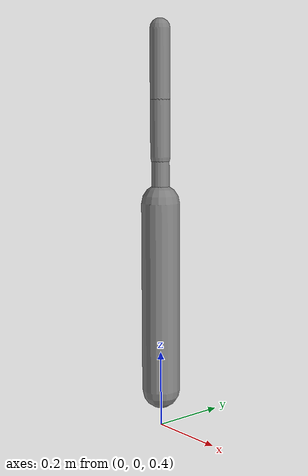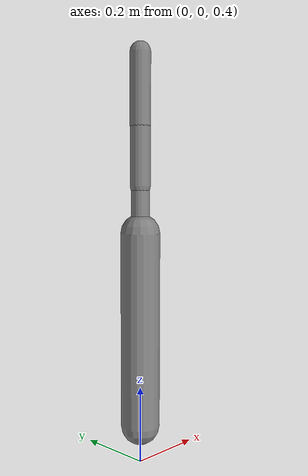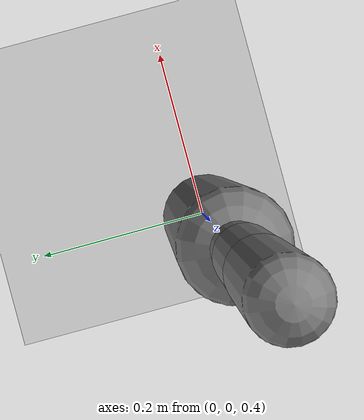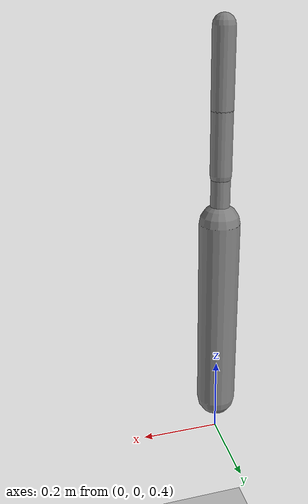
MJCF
<?xml version='1.0' encoding='UTF-8'?>
<mujoco model="RobotModel">
  <option gravity="0 0 -9.81" timestep="0.002" solver="CG" iterations="500" integrator="Euler"/>
  <worldbody>
    <geom name="Floor" type="plane" size="10 10 0.1" pos="0 0 0" rgba="0.8 0.8 0.8 1"/>
    <body name="Limb0" pos="0 0 0.5">
      <geom type="capsule" fromto="0 0 0 0 0 0.5" size="0.05" density="1000" contype="1" conaffinity="1"/>
      <body name="Limb0_cc182de4" pos="0 0 0.5">
        <geom type="capsule" fromto="0 0 0 0 0 0.17449306077830937" size="0.023287946870617703" density="500.0" contype="1" conaffinity="1"/>
        <body name="Limb1_cc182de4" pos="0 0 0.17449306077830937">
          <geom type="capsule" fromto="0 0 0 0 0 0.11268469928613485" size="0.02059896298135256" density="500.0" contype="1" conaffinity="1"/>
          <body name="Limb6_cc182de4" pos="0 0 0.11268469928613485">
            <geom type="capsule" fromto="0 0 0 0 0 0.1493042830534035" size="0.02272495473222482" density="800" contype="1" conaffinity="1"/>
            <joint name="Joint_Limb1_cc182de4_Limb6_cc182de4_0" type="hinge" axis="0 1 0" range="-45 45"/>
          </body>
          <joint name="Joint_Limb0_cc182de4_Limb1_cc182de4_0" type="hinge" axis="1 0 0" range="-60 60"/>
        </body>
        <joint name="Joint_Limb0_Limb0_cc182de4_0" type="hinge" axis="1 0 0" range="-60 60"/>
      </body>
      <body name="Limb2_cc182de4" pos="0 0 0.5">
        <geom type="capsule" fromto="0 0 0 0 0 0.11883754062203135" size="0.02126527195524245" density="500.0" contype="1" conaffinity="1"/>
        <body name="Limb3_cc182de4" pos="0 0 0.11883754062203135">
          <geom type="capsule" fromto="0 0 0 0 0 0.1651212455742152" size="0.025664360830728806" density="500.0" contype="1" conaffinity="1"/>
          <joint name="Joint_Limb2_cc182de4_Limb3_cc182de4_0" type="hinge" axis="1 0 0" range="-60 60"/>
        </body>
        <body name="Limb4_cc182de4" pos="0 0 0.11883754062203135">
          <geom type="capsule" fromto="0 0 0 0 0 0.15014106687939038" size="0.024853745027112795" density="800" contype="1" conaffinity="1"/>
          <body name="Limb5_cc182de4" pos="0 0 0.15014106687939038">
            <geom type="capsule" fromto="0 0 0 0 0 0.17656562307307058" size="0.026175720448540125" density="800" contype="1" conaffinity="1"/>
            <joint name="Joint_Limb4_cc182de4_Limb5_cc182de4_0" type="hinge" axis="0 1 0" range="-45 45"/>
          </body>
          <joint name="Joint_Limb2_cc182de4_Limb4_cc182de4_0" type="hinge" axis="0 1 0" range="-45 45"/>
        </body>
        <joint name="Joint_Limb0_Limb2_cc182de4_0" type="hinge" axis="0 1 0" range="-60 60"/>
      </body>
    </body>
  </worldbody>
  <actuator>
    <position name="position_Actuator_Joint_Limb0_Limb0_cc182de4_0" joint="Joint_Limb0_Limb0_cc182de4_0" gear="1.0"/>
    <position name="position_Actuator_Joint_Limb0_cc182de4_Limb1_cc182de4_0" joint="Joint_Limb0_cc182de4_Limb1_cc182de4_0" gear="1.0"/>
    <position name="position_Actuator_Joint_Limb1_cc182de4_Limb6_cc182de4_0" joint="Joint_Limb1_cc182de4_Limb6_cc182de4_0" gear="1.0"/>
    <position name="position_Actuator_Joint_Limb0_Limb2_cc182de4_0" joint="Joint_Limb0_Limb2_cc182de4_0" gear="1.0"/>
    <position name="position_Actuator_Joint_Limb2_cc182de4_Limb3_cc182de4_0" joint="Joint_Limb2_cc182de4_Limb3_cc182de4_0" gear="1.0"/>
    <position name="position_Actuator_Joint_Limb2_cc182de4_Limb4_cc182de4_0" joint="Joint_Limb2_cc182de4_Limb4_cc182de4_0" gear="1.0"/>
    <position name="position_Actuator_Joint_Limb4_cc182de4_Limb5_cc182de4_0" joint="Joint_Limb4_cc182de4_Limb5_cc182de4_0" gear="1.0"/>
  </actuator>
</mujoco>
